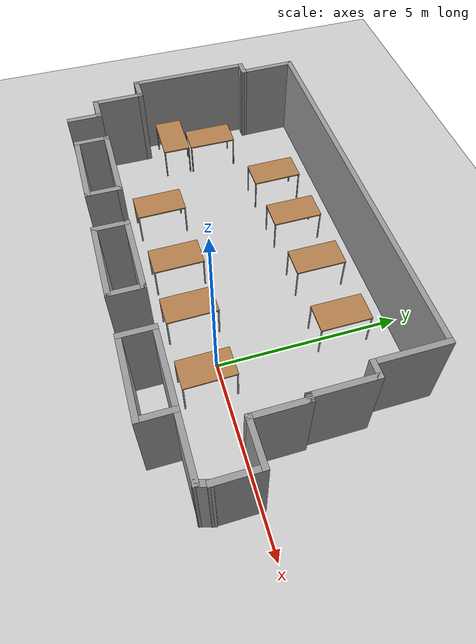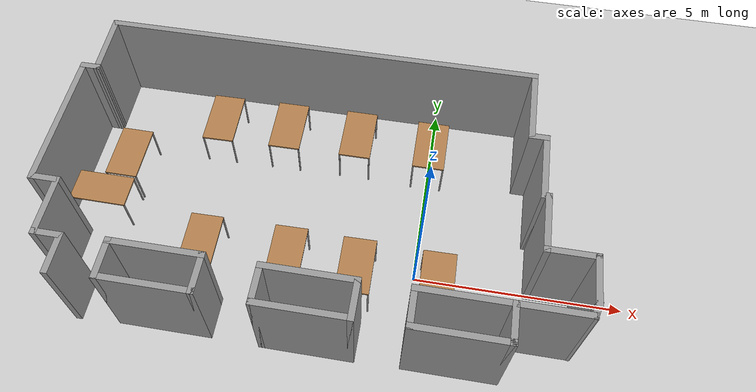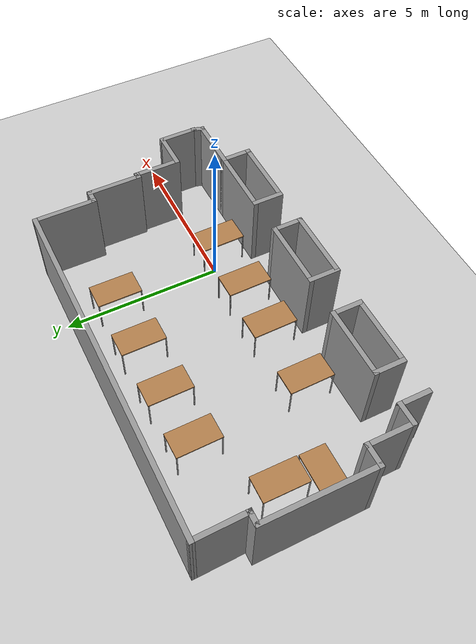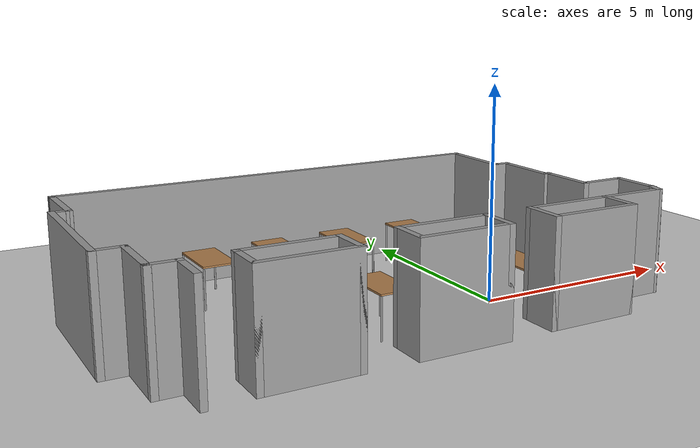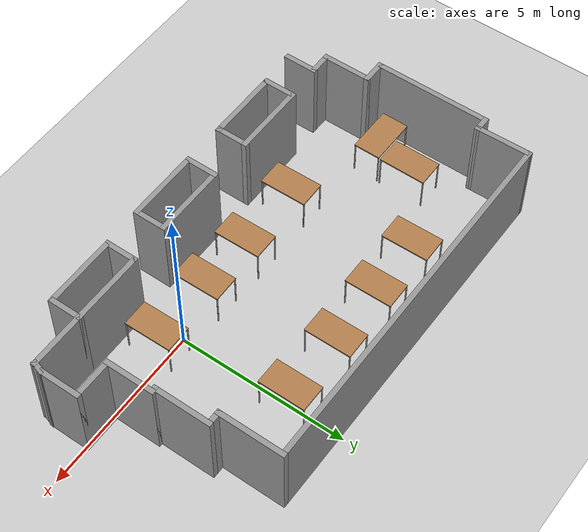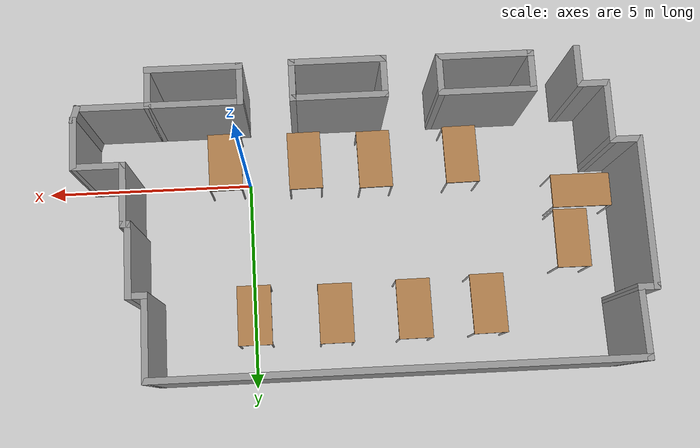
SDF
<sdf version="1.6">
 <world name="default">
  <light name="sun" type="directional">
   <pose>0 0 10 0 -0 0</pose>
   <diffuse>0.8 0.8 0.8 1</diffuse>
   <specular>0.1 0.1 0.1 1</specular>
   <attenuation>
    <range>1000</range>
    <constant>0.9</constant>
    <linear>0.01</linear>
    <quadratic>0.001</quadratic>
   </attenuation>
   <direction>-0.5 0.5 -1</direction>
  </light>
  <model name="ground_plane">
   <static>1</static>
   <link name="link">
    <collision name="collision">
     <geometry><plane><normal>0 0 1</normal><size>100 100</size></plane></geometry>
     <surface><friction><ode><mu>100</mu><mu2>50</mu2></ode></friction></surface>
    </collision>
    <visual name="visual">
     <cast_shadows>0</cast_shadows>
     <geometry><plane><normal>0 0 1</normal><size>100 100</size></plane></geometry>
     <material>
      <script><uri>file://media/materials/scripts/gazebo.material</uri><name>Gazebo/Grey</name></script>
     </material>
    </visual>
   </link>
  </model>
  <gravity>0 0 -9.8</gravity>
  <magnetic_field>6e-06 2.3e-05 -4.2e-05</magnetic_field>
  <atmosphere type="adiabatic"/>
  <physics name="default_physics" default="0" type="ode">
   <max_step_size>0.001</max_step_size>
   <real_time_factor>1</real_time_factor>
   <real_time_update_rate>1000</real_time_update_rate>
  </physics>
  <scene><ambient>0.4 0.4 0.4 1</ambient><background>0.7 0.7 0.7 1</background><shadows>1</shadows></scene>
  <spherical_coordinates>
   <surface_model>EARTH_WGS84</surface_model>
   <latitude_deg>0</latitude_deg>
   <longitude_deg>0</longitude_deg>
   <elevation>0</elevation>
   <heading_deg>0</heading_deg>
  </spherical_coordinates>
  <model name="kavezo">
   <pose>-2.54101 1.27594 0 0 -0 0</pose>
   <link name="Wall_0">
    <collision name="Wall_0_Collision">
     <geometry><box><size>11 0.15 2.5</size></box></geometry>
     <pose>0 0 1.25 0 -0 0</pose>
    </collision>
    <visual name="Wall_0_Visual">
     <pose>0 0 1.25 0 -0 0</pose>
     <geometry><box><size>11 0.15 2.5</size></box></geometry>
     <material>
      <script><uri>file://media/materials/scripts/gazebo.material</uri><name>Gazebo/Grey</name></script>
      <ambient>1 1 1 1</ambient>
     </material>
    </visual>
    <pose>-0.623111 3.53655 0 0 -0 0</pose>
   </link>
   <link name="Wall_1">
    <collision name="Wall_1_Collision">
     <geometry><box><size>2 0.15 2.5</size></box></geometry>
     <pose>0 0 1.25 0 -0 0</pose>
    </collision>
    <visual name="Wall_1_Visual">
     <pose>0 0 1.25 0 -0 0</pose>
     <geometry><box><size>2 0.15 2.5</size></box></geometry>
     <material>
      <script><uri>file://media/materials/scripts/gazebo.material</uri><name>Gazebo/Grey</name></script>
      <ambient>1 1 1 1</ambient>
     </material>
    </visual>
    <pose>4.80189 2.61155 0 0 0 -1.5708</pose>
   </link>
   <link name="Wall_10">
    <collision name="Wall_10_Collision">
     <geometry><box><size>0.75 0.15 2.5</size></box></geometry>
     <pose>0 0 1.25 0 -0 0</pose>
    </collision>
    <visual name="Wall_10_Visual">
     <pose>0 0 1.25 0 -0 0</pose>
     <geometry><box><size>0.75 0.15 2.5</size></box></geometry>
     <material>
      <script><uri>file://media/materials/scripts/gazebo.material</uri><name>Gazebo/Grey</name></script>
      <ambient>1 1 1 1</ambient>
     </material>
    </visual>
    <pose>-5.4703 -2.6879 0 0 -0 3.14159</pose>
   </link>
   <link name="Wall_11">
    <collision name="Wall_11_Collision">
     <geometry><box><size>1.5 0.15 2.5</size></box></geometry>
     <pose>0 0 1.25 0 -0 0</pose>
    </collision>
    <visual name="Wall_11_Visual">
     <pose>0 0 1.25 0 -0 0</pose>
     <geometry><box><size>1.5 0.15 2.5</size></box></geometry>
     <material>
      <script><uri>file://media/materials/scripts/gazebo.material</uri><name>Gazebo/Grey</name></script>
      <ambient>1 1 1 1</ambient>
     </material>
    </visual>
    <pose>-5.7703 -2.0129 0 0 -0 1.5708</pose>
   </link>
   <link name="Wall_12">
    <collision name="Wall_12_Collision">
     <geometry><box><size>0.75 0.15 2.5</size></box></geometry>
     <pose>0 0 1.25 0 -0 0</pose>
    </collision>
    <visual name="Wall_12_Visual">
     <pose>0 0 1.25 0 -0 0</pose>
     <geometry><box><size>0.75 0.15 2.5</size></box></geometry>
     <material>
      <script><uri>file://media/materials/scripts/gazebo.material</uri><name>Gazebo/Grey</name></script>
      <ambient>1 1 1 1</ambient>
     </material>
    </visual>
    <pose>-6.0703 -1.3379 0 0 -0 3.14159</pose>
   </link>
   <link name="Wall_13">
    <collision name="Wall_13_Collision">
     <geometry><box><size>3.5 0.15 2.5</size></box></geometry>
     <pose>0 0 1.25 0 -0 0</pose>
    </collision>
    <visual name="Wall_13_Visual">
     <pose>0 0 1.25 0 -0 0</pose>
     <geometry><box><size>3.5 0.15 2.5</size></box></geometry>
     <material>
      <script><uri>file://media/materials/scripts/gazebo.material</uri><name>Gazebo/Grey</name></script>
      <ambient>1 1 1 1</ambient>
     </material>
    </visual>
    <pose>-6.3703 0.337099 0 0 -0 1.5708</pose>
   </link>
   <link name="Wall_14">
    <collision name="Wall_14_Collision">
     <geometry><box><size>0.5 0.15 2.5</size></box></geometry>
     <pose>0 0 1.25 0 -0 0</pose>
    </collision>
    <visual name="Wall_14_Visual">
     <pose>0 0 1.25 0 -0 0</pose>
     <geometry><box><size>0.5 0.15 2.5</size></box></geometry>
     <material>
      <script><uri>file://media/materials/scripts/gazebo.material</uri><name>Gazebo/Grey</name></script>
      <ambient>1 1 1 1</ambient>
     </material>
    </visual>
    <pose>-6.1953 2.0121 0 0 -0 0</pose>
   </link>
   <link name="Wall_15">
    <collision name="Wall_15_Collision">
     <geometry><box><size>1.6747 0.15 2.5</size></box></geometry>
     <pose>0 0 1.25 0 -0 0</pose>
    </collision>
    <visual name="Wall_15_Visual">
     <pose>0 0 1.25 0 -0 0</pose>
     <geometry><box><size>1.6747 0.15 2.5</size></box></geometry>
     <material>
      <script><uri>file://media/materials/scripts/gazebo.material</uri><name>Gazebo/Grey</name></script>
      <ambient>1 1 1 1</ambient>
     </material>
    </visual>
    <pose>-6.03421 2.77432 0 0 -0 1.58903</pose>
   </link>
   <link name="Wall_17">
    <collision name="Wall_17_Collision">
     <geometry><box><size>1 0.15 2.5</size></box></geometry>
     <pose>0 0 1.25 0 -0 0</pose>
    </collision>
    <visual name="Wall_17_Visual">
     <pose>0 0 1.25 0 -0 0</pose>
     <geometry><box><size>1 0.15 2.5</size></box></geometry>
     <material>
      <script><uri>file://media/materials/scripts/gazebo.material</uri><name>Gazebo/Grey</name></script>
      <ambient>1 1 1 1</ambient>
     </material>
    </visual>
    <pose>-4.1063 -3.0597 0 0 0 -1.5708</pose>
   </link>
   <link name="Wall_18">
    <collision name="Wall_18_Collision">
     <geometry><box><size>2.25 0.15 2.5</size></box></geometry>
     <pose>0 0 1.25 0 -0 0</pose>
    </collision>
    <visual name="Wall_18_Visual">
     <pose>0 0 1.25 0 -0 0</pose>
     <geometry><box><size>2.25 0.15 2.5</size></box></geometry>
     <material>
      <script><uri>file://media/materials/scripts/gazebo.material</uri><name>Gazebo/Grey</name></script>
      <ambient>1 1 1 1</ambient>
     </material>
    </visual>
    <pose>-3.0563 -3.4847 0 0 -0 0</pose>
   </link>
   <link name="Wall_19">
    <collision name="Wall_19_Collision">
     <geometry><box><size>1 0.15 2.5</size></box></geometry>
     <pose>0 0 1.25 0 -0 0</pose>
    </collision>
    <visual name="Wall_19_Visual">
     <pose>0 0 1.25 0 -0 0</pose>
     <geometry><box><size>1 0.15 2.5</size></box></geometry>
     <material>
      <script><uri>file://media/materials/scripts/gazebo.material</uri><name>Gazebo/Grey</name></script>
      <ambient>1 1 1 1</ambient>
     </material>
    </visual>
    <pose>-2.0063 -3.0597 0 0 -0 1.5708</pose>
   </link>
   <link name="Wall_2">
    <collision name="Wall_2_Collision">
     <geometry><box><size>0.5 0.15 2.5</size></box></geometry>
     <pose>0 0 1.25 0 -0 0</pose>
    </collision>
    <visual name="Wall_2_Visual">
     <pose>0 0 1.25 0 -0 0</pose>
     <geometry><box><size>0.5 0.15 2.5</size></box></geometry>
     <material>
      <script><uri>file://media/materials/scripts/gazebo.material</uri><name>Gazebo/Grey</name></script>
      <ambient>1 1 1 1</ambient>
     </material>
    </visual>
    <pose>4.97689 1.68654 0 0 -0 0</pose>
   </link>
   <link name="Wall_20">
    <collision name="Wall_20_Collision">
     <geometry><box><size>2.25 0.15 2.5</size></box></geometry>
     <pose>0 0 1.25 0 -0 0</pose>
    </collision>
    <visual name="Wall_20_Visual">
     <pose>0 0 1.25 0 -0 0</pose>
     <geometry><box><size>2.25 0.15 2.5</size></box></geometry>
     <material>
      <script><uri>file://media/materials/scripts/gazebo.material</uri><name>Gazebo/Grey</name></script>
      <ambient>1 1 1 1</ambient>
     </material>
    </visual>
    <pose>-3.0563 -2.6347 0 0 -0 3.14159</pose>
   </link>
   <link name="Wall_22">
    <collision name="Wall_22_Collision">
     <geometry><box><size>1 0.15 2.5</size></box></geometry>
     <pose>0 0 1.25 0 -0 0</pose>
    </collision>
    <visual name="Wall_22_Visual">
     <pose>0 0 1.25 0 -0 0</pose>
     <geometry><box><size>1 0.15 2.5</size></box></geometry>
     <material>
      <script><uri>file://media/materials/scripts/gazebo.material</uri><name>Gazebo/Grey</name></script>
      <ambient>1 1 1 1</ambient>
     </material>
    </visual>
    <pose>1.37335 -3.08751 0 0 -0 1.5708</pose>
   </link>
   <link name="Wall_23">
    <collision name="Wall_23_Collision">
     <geometry><box><size>2.25 0.15 2.5</size></box></geometry>
     <pose>0 0 1.25 0 -0 0</pose>
    </collision>
    <visual name="Wall_23_Visual">
     <pose>0 0 1.25 0 -0 0</pose>
     <geometry><box><size>2.25 0.15 2.5</size></box></geometry>
     <material>
      <script><uri>file://media/materials/scripts/gazebo.material</uri><name>Gazebo/Grey</name></script>
      <ambient>1 1 1 1</ambient>
     </material>
    </visual>
    <pose>0.323345 -2.66251 0 0 -0 3.14159</pose>
   </link>
   <link name="Wall_24">
    <collision name="Wall_24_Collision">
     <geometry><box><size>1 0.15 2.5</size></box></geometry>
     <pose>0 0 1.25 0 -0 0</pose>
    </collision>
    <visual name="Wall_24_Visual">
     <pose>0 0 1.25 0 -0 0</pose>
     <geometry><box><size>1 0.15 2.5</size></box></geometry>
     <material>
      <script><uri>file://media/materials/scripts/gazebo.material</uri><name>Gazebo/Grey</name></script>
      <ambient>1 1 1 1</ambient>
     </material>
    </visual>
    <pose>-0.726655 -3.08751 0 0 0 -1.5708</pose>
   </link>
   <link name="Wall_25">
    <collision name="Wall_25_Collision">
     <geometry><box><size>2.25 0.15 2.5</size></box></geometry>
     <pose>0 0 1.25 0 -0 0</pose>
    </collision>
    <visual name="Wall_25_Visual">
     <pose>0 0 1.25 0 -0 0</pose>
     <geometry><box><size>2.25 0.15 2.5</size></box></geometry>
     <material>
      <script><uri>file://media/materials/scripts/gazebo.material</uri><name>Gazebo/Grey</name></script>
      <ambient>1 1 1 1</ambient>
     </material>
    </visual>
    <pose>0.323345 -3.51251 0 0 -0 0</pose>
   </link>
   <link name="Wall_27">
    <collision name="Wall_27_Collision">
     <geometry><box><size>1 0.15 2.5</size></box></geometry>
     <pose>0 0 1.25 0 -0 0</pose>
    </collision>
    <visual name="Wall_27_Visual">
     <pose>0 0 1.25 0 -0 0</pose>
     <geometry><box><size>1 0.15 2.5</size></box></geometry>
     <material>
      <script><uri>file://media/materials/scripts/gazebo.material</uri><name>Gazebo/Grey</name></script>
      <ambient>1 1 1 1</ambient>
     </material>
    </visual>
    <pose>2.57035 -3.0597 0 0 0 -1.5708</pose>
   </link>
   <link name="Wall_28">
    <collision name="Wall_28_Collision">
     <geometry><box><size>2.25 0.15 2.5</size></box></geometry>
     <pose>0 0 1.25 0 -0 0</pose>
    </collision>
    <visual name="Wall_28_Visual">
     <pose>0 0 1.25 0 -0 0</pose>
     <geometry><box><size>2.25 0.15 2.5</size></box></geometry>
     <material>
      <script><uri>file://media/materials/scripts/gazebo.material</uri><name>Gazebo/Grey</name></script>
      <ambient>1 1 1 1</ambient>
     </material>
    </visual>
    <pose>3.62035 -3.4847 0 0 -0 0</pose>
   </link>
   <link name="Wall_29">
    <collision name="Wall_29_Collision">
     <geometry><box><size>1 0.15 2.5</size></box></geometry>
     <pose>0 0 1.25 0 -0 0</pose>
    </collision>
    <visual name="Wall_29_Visual">
     <pose>0 0 1.25 0 -0 0</pose>
     <geometry><box><size>1 0.15 2.5</size></box></geometry>
     <material>
      <script><uri>file://media/materials/scripts/gazebo.material</uri><name>Gazebo/Grey</name></script>
      <ambient>1 1 1 1</ambient>
     </material>
    </visual>
    <pose>4.67035 -3.0597 0 0 -0 1.5708</pose>
   </link>
   <link name="Wall_3">
    <collision name="Wall_3_Collision">
     <geometry><box><size>1.75 0.15 2.5</size></box></geometry>
     <pose>0 0 1.25 0 -0 0</pose>
    </collision>
    <visual name="Wall_3_Visual">
     <pose>0 0 1.25 0 -0 0</pose>
     <geometry><box><size>1.75 0.15 2.5</size></box></geometry>
     <material>
      <script><uri>file://media/materials/scripts/gazebo.material</uri><name>Gazebo/Grey</name></script>
      <ambient>1 1 1 1</ambient>
     </material>
    </visual>
    <pose>5.15189 0.886546 0 0 0 -1.5708</pose>
   </link>
   <link name="Wall_32">
    <collision name="Wall_32_Collision">
     <geometry><box><size>2.25 0.15 2.5</size></box></geometry>
     <pose>0 0 1.25 0 -0 0</pose>
    </collision>
    <visual name="Wall_32_Visual">
     <pose>0 0 1.25 0 -0 0</pose>
     <geometry><box><size>2.25 0.15 2.5</size></box></geometry>
     <material>
      <script><uri>file://media/materials/scripts/gazebo.material</uri><name>Gazebo/Grey</name></script>
      <ambient>1 1 1 1</ambient>
     </material>
    </visual>
    <pose>3.62035 -2.6347 0 0 -0 3.14159</pose>
   </link>
   <link name="Wall_34">
    <collision name="Wall_34_Collision">
     <geometry><box><size>1.75 0.15 2.5</size></box></geometry>
     <pose>0 0 1.25 0 -0 0</pose>
    </collision>
    <visual name="Wall_34_Visual">
     <pose>0 0 1.25 0 -0 0</pose>
     <geometry><box><size>1.75 0.15 2.5</size></box></geometry>
     <material>
      <script><uri>file://media/materials/scripts/gazebo.material</uri><name>Gazebo/Grey</name></script>
      <ambient>1 1 1 1</ambient>
     </material>
    </visual>
    <pose>5.47035 -2.6347 0 0 -0 0</pose>
   </link>
   <link name="Wall_35">
    <collision name="Wall_35_Collision">
     <geometry><box><size>0.433236 0.15 2.5</size></box></geometry>
     <pose>0 0 1.25 0 -0 0</pose>
    </collision>
    <visual name="Wall_35_Visual">
     <pose>0 0 1.25 0 -0 0</pose>
     <geometry><box><size>0.433236 0.15 2.5</size></box></geometry>
     <material>
      <script><uri>file://media/materials/scripts/gazebo.material</uri><name>Gazebo/Grey</name></script>
      <ambient>1 1 1 1</ambient>
     </material>
    </visual>
    <pose>6.31112 -2.49908 0 0 -0 1.27879</pose>
   </link>
   <link name="Wall_37">
    <collision name="Wall_37_Collision">
     <geometry><box><size>1 0.15 2.5</size></box></geometry>
     <pose>0 0 1.25 0 -0 0</pose>
    </collision>
    <visual name="Wall_37_Visual">
     <pose>0 0 1.25 0 -0 0</pose>
     <geometry><box><size>1 0.15 2.5</size></box></geometry>
     <material>
      <script><uri>file://media/materials/scripts/gazebo.material</uri><name>Gazebo/Grey</name></script>
      <ambient>1 1 1 1</ambient>
     </material>
    </visual>
    <pose>-5.1703 -3.1129 0 0 0 -1.5708</pose>
   </link>
   <link name="Wall_4">
    <collision name="Wall_4_Collision">
     <geometry><box><size>0.25 0.15 2.5</size></box></geometry>
     <pose>0 0 1.25 0 -0 0</pose>
    </collision>
    <visual name="Wall_4_Visual">
     <pose>0 0 1.25 0 -0 0</pose>
     <geometry><box><size>0.25 0.15 2.5</size></box></geometry>
     <material>
      <script><uri>file://media/materials/scripts/gazebo.material</uri><name>Gazebo/Grey</name></script>
      <ambient>1 1 1 1</ambient>
     </material>
    </visual>
    <pose>5.20189 0.086546 0 0 -0 0</pose>
   </link>
   <link name="Wall_5">
    <collision name="Wall_5_Collision">
     <geometry><box><size>1.5 0.15 2.5</size></box></geometry>
     <pose>0 0 1.25 0 -0 0</pose>
    </collision>
    <visual name="Wall_5_Visual">
     <pose>0 0 1.25 0 -0 0</pose>
     <geometry><box><size>1.5 0.15 2.5</size></box></geometry>
     <material>
      <script><uri>file://media/materials/scripts/gazebo.material</uri><name>Gazebo/Grey</name></script>
      <ambient>1 1 1 1</ambient>
     </material>
    </visual>
    <pose>5.25189 -0.588454 0 0 0 -1.5708</pose>
   </link>
   <link name="Wall_6">
    <collision name="Wall_6_Collision">
     <geometry><box><size>1.25 0.15 2.5</size></box></geometry>
     <pose>0 0 1.25 0 -0 0</pose>
    </collision>
    <visual name="Wall_6_Visual">
     <pose>0 0 1.25 0 -0 0</pose>
     <geometry><box><size>1.25 0.15 2.5</size></box></geometry>
     <material>
      <script><uri>file://media/materials/scripts/gazebo.material</uri><name>Gazebo/Grey</name></script>
      <ambient>1 1 1 1</ambient>
     </material>
    </visual>
    <pose>5.80189 -1.26345 0 0 -0 0</pose>
   </link>
   <link name="Wall_7">
    <collision name="Wall_7_Collision">
     <geometry><box><size>1.25 0.15 2.5</size></box></geometry>
     <pose>0 0 1.25 0 -0 0</pose>
    </collision>
    <visual name="Wall_7_Visual">
     <pose>0 0 1.25 0 -0 0</pose>
     <geometry><box><size>1.25 0.15 2.5</size></box></geometry>
     <material>
      <script><uri>file://media/materials/scripts/gazebo.material</uri><name>Gazebo/Grey</name></script>
      <ambient>1 1 1 1</ambient>
     </material>
    </visual>
    <pose>6.35189 -1.81345 0 0 0 -1.5708</pose>
   </link>
   <static>1</static>
  </model>
  <model name="table">
   <static>0</static>
   <link name="link">
    <collision name="surface">
     <pose>0 0 1 0 -0 0</pose>
     <geometry><box><size>1.5 0.8 0.03</size></box></geometry>
     <surface><friction><ode><mu>0.6</mu><mu2>0.6</mu2></ode></friction></surface>
    </collision>
    <visual name="visual1">
     <pose>0 0 1 0 -0 0</pose>
     <geometry><box><size>1.4 0.8 0.04</size></box></geometry>
     <material>
      <script><uri>file://media/materials/scripts/gazebo.material</uri><name>Gazebo/Wood</name></script>
     </material>
    </visual>
    <collision name="front_left_leg">
     <pose>0.68 0.38 0.5 0 -0 0</pose>
     <geometry><cylinder><radius>0.02</radius><length>1</length></cylinder></geometry>
    </collision>
    <visual name="front_left_leg">
     <pose>0.68 0.38 0.5 0 -0 0</pose>
     <geometry><cylinder><radius>0.02</radius><length>1</length></cylinder></geometry>
     <material>
      <script><uri>file://media/materials/scripts/gazebo.material</uri><name>Gazebo/Grey</name></script>
     </material>
    </visual>
    <collision name="front_right_leg">
     <pose>0.68 -0.38 0.5 0 -0 0</pose>
     <geometry><cylinder><radius>0.02</radius><length>1</length></cylinder></geometry>
    </collision>
    <visual name="front_right_leg">
     <pose>0.68 -0.38 0.5 0 -0 0</pose>
     <geometry><cylinder><radius>0.02</radius><length>1</length></cylinder></geometry>
     <material>
      <script><uri>file://media/materials/scripts/gazebo.material</uri><name>Gazebo/Grey</name></script>
     </material>
    </visual>
    <collision name="back_right_leg">
     <pose>-0.68 -0.38 0.5 0 -0 0</pose>
     <geometry><cylinder><radius>0.02</radius><length>1</length></cylinder></geometry>
    </collision>
    <visual name="back_right_leg">
     <pose>-0.68 -0.38 0.5 0 -0 0</pose>
     <geometry><cylinder><radius>0.02</radius><length>1</length></cylinder></geometry>
     <material>
      <script><uri>file://media/materials/scripts/gazebo.material</uri><name>Gazebo/Grey</name></script>
     </material>
    </visual>
    <collision name="back_left_leg">
     <pose>-0.68 0.38 0.5 0 -0 0</pose>
     <geometry><cylinder><radius>0.02</radius><length>1</length></cylinder></geometry>
    </collision>
    <visual name="back_left_leg">
     <pose>-0.68 0.38 0.5 0 -0 0</pose>
     <geometry><cylinder><radius>0.02</radius><length>1</length></cylinder></geometry>
     <material>
      <script><uri>file://media/materials/scripts/gazebo.material</uri><name>Gazebo/Grey</name></script>
     </material>
    </visual>
    <inertial>
     <inertia><ixx>1</ixx><ixy>0</ixy><ixz>0</ixz><iyy>1</iyy><iyz>0</iyz><izz>1</izz></inertia>
     <mass>1</mass>
    </inertial>
   </link>
   <pose>-0.039109 3.34951 -9e-06 0 -1e-06 -1.57133</pose>
  </model>
  <model name="table_0">
   <static>0</static>
   <link name="link">
    <collision name="surface">
     <pose>0 0 1 0 -0 0</pose>
     <geometry><box><size>1.5 0.8 0.03</size></box></geometry>
     <surface><friction><ode><mu>0.6</mu><mu2>0.6</mu2></ode></friction></surface>
    </collision>
    <visual name="visual1">
     <pose>0 0 1 0 -0 0</pose>
     <geometry><box><size>1.4 0.8 0.04</size></box></geometry>
     <material>
      <script><uri>file://media/materials/scripts/gazebo.material</uri><name>Gazebo/Wood</name></script>
     </material>
    </visual>
    <collision name="front_left_leg">
     <pose>0.68 0.38 0.5 0 -0 0</pose>
     <geometry><cylinder><radius>0.02</radius><length>1</length></cylinder></geometry>
    </collision>
    <visual name="front_left_leg">
     <pose>0.68 0.38 0.5 0 -0 0</pose>
     <geometry><cylinder><radius>0.02</radius><length>1</length></cylinder></geometry>
     <material>
      <script><uri>file://media/materials/scripts/gazebo.material</uri><name>Gazebo/Grey</name></script>
     </material>
    </visual>
    <collision name="front_right_leg">
     <pose>0.68 -0.38 0.5 0 -0 0</pose>
     <geometry><cylinder><radius>0.02</radius><length>1</length></cylinder></geometry>
    </collision>
    <visual name="front_right_leg">
     <pose>0.68 -0.38 0.5 0 -0 0</pose>
     <geometry><cylinder><radius>0.02</radius><length>1</length></cylinder></geometry>
     <material>
      <script><uri>file://media/materials/scripts/gazebo.material</uri><name>Gazebo/Grey</name></script>
     </material>
    </visual>
    <collision name="back_right_leg">
     <pose>-0.68 -0.38 0.5 0 -0 0</pose>
     <geometry><cylinder><radius>0.02</radius><length>1</length></cylinder></geometry>
    </collision>
    <visual name="back_right_leg">
     <pose>-0.68 -0.38 0.5 0 -0 0</pose>
     <geometry><cylinder><radius>0.02</radius><length>1</length></cylinder></geometry>
     <material>
      <script><uri>file://media/materials/scripts/gazebo.material</uri><name>Gazebo/Grey</name></script>
     </material>
    </visual>
    <collision name="back_left_leg">
     <pose>-0.68 0.38 0.5 0 -0 0</pose>
     <geometry><cylinder><radius>0.02</radius><length>1</length></cylinder></geometry>
    </collision>
    <visual name="back_left_leg">
     <pose>-0.68 0.38 0.5 0 -0 0</pose>
     <geometry><cylinder><radius>0.02</radius><length>1</length></cylinder></geometry>
     <material>
      <script><uri>file://media/materials/scripts/gazebo.material</uri><name>Gazebo/Grey</name></script>
     </material>
    </visual>
    <inertial>
     <inertia><ixx>1</ixx><ixy>0</ixy><ixz>0</ixz><iyy>1</iyy><iyz>0</iyz><izz>1</izz></inertia>
     <mass>1</mass>
    </inertial>
   </link>
   <pose>-1.9371 3.38738 -8e-06 0 -1e-06 -1.56758</pose>
  </model>
  <model name="table_1">
   <static>0</static>
   <link name="link">
    <collision name="surface">
     <pose>0 0 1 0 -0 0</pose>
     <geometry><box><size>1.5 0.8 0.03</size></box></geometry>
     <surface><friction><ode><mu>0.6</mu><mu2>0.6</mu2></ode></friction></surface>
    </collision>
    <visual name="visual1">
     <pose>0 0 1 0 -0 0</pose>
     <geometry><box><size>1.4 0.8 0.04</size></box></geometry>
     <material>
      <script><uri>file://media/materials/scripts/gazebo.material</uri><name>Gazebo/Wood</name></script>
     </material>
    </visual>
    <collision name="front_left_leg">
     <pose>0.68 0.38 0.5 0 -0 0</pose>
     <geometry><cylinder><radius>0.02</radius><length>1</length></cylinder></geometry>
    </collision>
    <visual name="front_left_leg">
     <pose>0.68 0.38 0.5 0 -0 0</pose>
     <geometry><cylinder><radius>0.02</radius><length>1</length></cylinder></geometry>
     <material>
      <script><uri>file://media/materials/scripts/gazebo.material</uri><name>Gazebo/Grey</name></script>
     </material>
    </visual>
    <collision name="front_right_leg">
     <pose>0.68 -0.38 0.5 0 -0 0</pose>
     <geometry><cylinder><radius>0.02</radius><length>1</length></cylinder></geometry>
    </collision>
    <visual name="front_right_leg">
     <pose>0.68 -0.38 0.5 0 -0 0</pose>
     <geometry><cylinder><radius>0.02</radius><length>1</length></cylinder></geometry>
     <material>
      <script><uri>file://media/materials/scripts/gazebo.material</uri><name>Gazebo/Grey</name></script>
     </material>
    </visual>
    <collision name="back_right_leg">
     <pose>-0.68 -0.38 0.5 0 -0 0</pose>
     <geometry><cylinder><radius>0.02</radius><length>1</length></cylinder></geometry>
    </collision>
    <visual name="back_right_leg">
     <pose>-0.68 -0.38 0.5 0 -0 0</pose>
     <geometry><cylinder><radius>0.02</radius><length>1</length></cylinder></geometry>
     <material>
      <script><uri>file://media/materials/scripts/gazebo.material</uri><name>Gazebo/Grey</name></script>
     </material>
    </visual>
    <collision name="back_left_leg">
     <pose>-0.68 0.38 0.5 0 -0 0</pose>
     <geometry><cylinder><radius>0.02</radius><length>1</length></cylinder></geometry>
    </collision>
    <visual name="back_left_leg">
     <pose>-0.68 0.38 0.5 0 -0 0</pose>
     <geometry><cylinder><radius>0.02</radius><length>1</length></cylinder></geometry>
     <material>
      <script><uri>file://media/materials/scripts/gazebo.material</uri><name>Gazebo/Grey</name></script>
     </material>
    </visual>
    <inertial>
     <inertia><ixx>1</ixx><ixy>0</ixy><ixz>0</ixz><iyy>1</iyy><iyz>0</iyz><izz>1</izz></inertia>
     <mass>1</mass>
    </inertial>
   </link>
   <pose>-3.77213 3.36443 -2e-06 0 0 -1.56512</pose>
  </model>
  <model name="table_2">
   <static>0</static>
   <link name="link">
    <collision name="surface">
     <pose>0 0 1 0 -0 0</pose>
     <geometry><box><size>1.5 0.8 0.03</size></box></geometry>
     <surface><friction><ode><mu>0.6</mu><mu2>0.6</mu2></ode></friction></surface>
    </collision>
    <visual name="visual1">
     <pose>0 0 1 0 -0 0</pose>
     <geometry><box><size>1.4 0.8 0.04</size></box></geometry>
     <material>
      <script><uri>file://media/materials/scripts/gazebo.material</uri><name>Gazebo/Wood</name></script>
     </material>
    </visual>
    <collision name="front_left_leg">
     <pose>0.68 0.38 0.5 0 -0 0</pose>
     <geometry><cylinder><radius>0.02</radius><length>1</length></cylinder></geometry>
    </collision>
    <visual name="front_left_leg">
     <pose>0.68 0.38 0.5 0 -0 0</pose>
     <geometry><cylinder><radius>0.02</radius><length>1</length></cylinder></geometry>
     <material>
      <script><uri>file://media/materials/scripts/gazebo.material</uri><name>Gazebo/Grey</name></script>
     </material>
    </visual>
    <collision name="front_right_leg">
     <pose>0.68 -0.38 0.5 0 -0 0</pose>
     <geometry><cylinder><radius>0.02</radius><length>1</length></cylinder></geometry>
    </collision>
    <visual name="front_right_leg">
     <pose>0.68 -0.38 0.5 0 -0 0</pose>
     <geometry><cylinder><radius>0.02</radius><length>1</length></cylinder></geometry>
     <material>
      <script><uri>file://media/materials/scripts/gazebo.material</uri><name>Gazebo/Grey</name></script>
     </material>
    </visual>
    <collision name="back_right_leg">
     <pose>-0.68 -0.38 0.5 0 -0 0</pose>
     <geometry><cylinder><radius>0.02</radius><length>1</length></cylinder></geometry>
    </collision>
    <visual name="back_right_leg">
     <pose>-0.68 -0.38 0.5 0 -0 0</pose>
     <geometry><cylinder><radius>0.02</radius><length>1</length></cylinder></geometry>
     <material>
      <script><uri>file://media/materials/scripts/gazebo.material</uri><name>Gazebo/Grey</name></script>
     </material>
    </visual>
    <collision name="back_left_leg">
     <pose>-0.68 0.38 0.5 0 -0 0</pose>
     <geometry><cylinder><radius>0.02</radius><length>1</length></cylinder></geometry>
    </collision>
    <visual name="back_left_leg">
     <pose>-0.68 0.38 0.5 0 -0 0</pose>
     <geometry><cylinder><radius>0.02</radius><length>1</length></cylinder></geometry>
     <material>
      <script><uri>file://media/materials/scripts/gazebo.material</uri><name>Gazebo/Grey</name></script>
     </material>
    </visual>
    <inertial>
     <inertia><ixx>1</ixx><ixy>0</ixy><ixz>0</ixz><iyy>1</iyy><iyz>0</iyz><izz>1</izz></inertia>
     <mass>1</mass>
    </inertial>
   </link>
   <pose>-5.51474 3.32524 -1e-06 0 1e-06 -1.55865</pose>
  </model>
  <model name="table_3">
   <static>0</static>
   <link name="link">
    <collision name="surface">
     <pose>0 0 1 0 -0 0</pose>
     <geometry><box><size>1.5 0.8 0.03</size></box></geometry>
     <surface><friction><ode><mu>0.6</mu><mu2>0.6</mu2></ode></friction></surface>
    </collision>
    <visual name="visual1">
     <pose>0 0 1 0 -0 0</pose>
     <geometry><box><size>1.4 0.8 0.04</size></box></geometry>
     <material>
      <script><uri>file://media/materials/scripts/gazebo.material</uri><name>Gazebo/Wood</name></script>
     </material>
    </visual>
    <collision name="front_left_leg">
     <pose>0.68 0.38 0.5 0 -0 0</pose>
     <geometry><cylinder><radius>0.02</radius><length>1</length></cylinder></geometry>
    </collision>
    <visual name="front_left_leg">
     <pose>0.68 0.38 0.5 0 -0 0</pose>
     <geometry><cylinder><radius>0.02</radius><length>1</length></cylinder></geometry>
     <material>
      <script><uri>file://media/materials/scripts/gazebo.material</uri><name>Gazebo/Grey</name></script>
     </material>
    </visual>
    <collision name="front_right_leg">
     <pose>0.68 -0.38 0.5 0 -0 0</pose>
     <geometry><cylinder><radius>0.02</radius><length>1</length></cylinder></geometry>
    </collision>
    <visual name="front_right_leg">
     <pose>0.68 -0.38 0.5 0 -0 0</pose>
     <geometry><cylinder><radius>0.02</radius><length>1</length></cylinder></geometry>
     <material>
      <script><uri>file://media/materials/scripts/gazebo.material</uri><name>Gazebo/Grey</name></script>
     </material>
    </visual>
    <collision name="back_right_leg">
     <pose>-0.68 -0.38 0.5 0 -0 0</pose>
     <geometry><cylinder><radius>0.02</radius><length>1</length></cylinder></geometry>
    </collision>
    <visual name="back_right_leg">
     <pose>-0.68 -0.38 0.5 0 -0 0</pose>
     <geometry><cylinder><radius>0.02</radius><length>1</length></cylinder></geometry>
     <material>
      <script><uri>file://media/materials/scripts/gazebo.material</uri><name>Gazebo/Grey</name></script>
     </material>
    </visual>
    <collision name="back_left_leg">
     <pose>-0.68 0.38 0.5 0 -0 0</pose>
     <geometry><cylinder><radius>0.02</radius><length>1</length></cylinder></geometry>
    </collision>
    <visual name="back_left_leg">
     <pose>-0.68 0.38 0.5 0 -0 0</pose>
     <geometry><cylinder><radius>0.02</radius><length>1</length></cylinder></geometry>
     <material>
      <script><uri>file://media/materials/scripts/gazebo.material</uri><name>Gazebo/Grey</name></script>
     </material>
    </visual>
    <inertial>
     <inertia><ixx>1</ixx><ixy>0</ixy><ixz>0</ixz><iyy>1</iyy><iyz>0</iyz><izz>1</izz></inertia>
     <mass>1</mass>
    </inertial>
   </link>
   <pose>-7.93959 0.716518 -1e-06 0 2e-06 -0.00588</pose>
  </model>
  <model name="table_4">
   <static>0</static>
   <link name="link">
    <collision name="surface">
     <pose>0 0 1 0 -0 0</pose>
     <geometry><box><size>1.5 0.8 0.03</size></box></geometry>
     <surface><friction><ode><mu>0.6</mu><mu2>0.6</mu2></ode></friction></surface>
    </collision>
    <visual name="visual1">
     <pose>0 0 1 0 -0 0</pose>
     <geometry><box><size>1.4 0.8 0.04</size></box></geometry>
     <material>
      <script><uri>file://media/materials/scripts/gazebo.material</uri><name>Gazebo/Wood</name></script>
     </material>
    </visual>
    <collision name="front_left_leg">
     <pose>0.68 0.38 0.5 0 -0 0</pose>
     <geometry><cylinder><radius>0.02</radius><length>1</length></cylinder></geometry>
    </collision>
    <visual name="front_left_leg">
     <pose>0.68 0.38 0.5 0 -0 0</pose>
     <geometry><cylinder><radius>0.02</radius><length>1</length></cylinder></geometry>
     <material>
      <script><uri>file://media/materials/scripts/gazebo.material</uri><name>Gazebo/Grey</name></script>
     </material>
    </visual>
    <collision name="front_right_leg">
     <pose>0.68 -0.38 0.5 0 -0 0</pose>
     <geometry><cylinder><radius>0.02</radius><length>1</length></cylinder></geometry>
    </collision>
    <visual name="front_right_leg">
     <pose>0.68 -0.38 0.5 0 -0 0</pose>
     <geometry><cylinder><radius>0.02</radius><length>1</length></cylinder></geometry>
     <material>
      <script><uri>file://media/materials/scripts/gazebo.material</uri><name>Gazebo/Grey</name></script>
     </material>
    </visual>
    <collision name="back_right_leg">
     <pose>-0.68 -0.38 0.5 0 -0 0</pose>
     <geometry><cylinder><radius>0.02</radius><length>1</length></cylinder></geometry>
    </collision>
    <visual name="back_right_leg">
     <pose>-0.68 -0.38 0.5 0 -0 0</pose>
     <geometry><cylinder><radius>0.02</radius><length>1</length></cylinder></geometry>
     <material>
      <script><uri>file://media/materials/scripts/gazebo.material</uri><name>Gazebo/Grey</name></script>
     </material>
    </visual>
    <collision name="back_left_leg">
     <pose>-0.68 0.38 0.5 0 -0 0</pose>
     <geometry><cylinder><radius>0.02</radius><length>1</length></cylinder></geometry>
    </collision>
    <visual name="back_left_leg">
     <pose>-0.68 0.38 0.5 0 -0 0</pose>
     <geometry><cylinder><radius>0.02</radius><length>1</length></cylinder></geometry>
     <material>
      <script><uri>file://media/materials/scripts/gazebo.material</uri><name>Gazebo/Grey</name></script>
     </material>
    </visual>
    <inertial>
     <inertia><ixx>1</ixx><ixy>0</ixy><ixz>0</ixz><iyy>1</iyy><iyz>0</iyz><izz>1</izz></inertia>
     <mass>1</mass>
    </inertial>
   </link>
   <pose>-7.61656 1.86464 -8e-06 0 0 -1.57668</pose>
  </model>
  <model name="table_2_clone">
   <static>0</static>
   <link name="link">
    <collision name="surface">
     <pose>0 0 1 0 -0 0</pose>
     <geometry><box><size>1.5 0.8 0.03</size></box></geometry>
     <surface><friction><ode><mu>0.6</mu><mu2>0.6</mu2></ode></friction></surface>
    </collision>
    <visual name="visual1">
     <pose>0 0 1 0 -0 0</pose>
     <geometry><box><size>1.4 0.8 0.04</size></box></geometry>
     <material>
      <script><uri>file://media/materials/scripts/gazebo.material</uri><name>Gazebo/Wood</name></script>
     </material>
    </visual>
    <collision name="front_left_leg">
     <pose>0.68 0.38 0.5 0 -0 0</pose>
     <geometry><cylinder><radius>0.02</radius><length>1</length></cylinder></geometry>
    </collision>
    <visual name="front_left_leg">
     <pose>0.68 0.38 0.5 0 -0 0</pose>
     <geometry><cylinder><radius>0.02</radius><length>1</length></cylinder></geometry>
     <material>
      <script><uri>file://media/materials/scripts/gazebo.material</uri><name>Gazebo/Grey</name></script>
     </material>
    </visual>
    <collision name="front_right_leg">
     <pose>0.68 -0.38 0.5 0 -0 0</pose>
     <geometry><cylinder><radius>0.02</radius><length>1</length></cylinder></geometry>
    </collision>
    <visual name="front_right_leg">
     <pose>0.68 -0.38 0.5 0 -0 0</pose>
     <geometry><cylinder><radius>0.02</radius><length>1</length></cylinder></geometry>
     <material>
      <script><uri>file://media/materials/scripts/gazebo.material</uri><name>Gazebo/Grey</name></script>
     </material>
    </visual>
    <collision name="back_right_leg">
     <pose>-0.68 -0.38 0.5 0 -0 0</pose>
     <geometry><cylinder><radius>0.02</radius><length>1</length></cylinder></geometry>
    </collision>
    <visual name="back_right_leg">
     <pose>-0.68 -0.38 0.5 0 -0 0</pose>
     <geometry><cylinder><radius>0.02</radius><length>1</length></cylinder></geometry>
     <material>
      <script><uri>file://media/materials/scripts/gazebo.material</uri><name>Gazebo/Grey</name></script>
     </material>
    </visual>
    <collision name="back_left_leg">
     <pose>-0.68 0.38 0.5 0 -0 0</pose>
     <geometry><cylinder><radius>0.02</radius><length>1</length></cylinder></geometry>
    </collision>
    <visual name="back_left_leg">
     <pose>-0.68 0.38 0.5 0 -0 0</pose>
     <geometry><cylinder><radius>0.02</radius><length>1</length></cylinder></geometry>
     <material>
      <script><uri>file://media/materials/scripts/gazebo.material</uri><name>Gazebo/Grey</name></script>
     </material>
    </visual>
    <inertial>
     <inertia><ixx>1</ixx><ixy>0</ixy><ixz>0</ixz><iyy>1</iyy><iyz>0</iyz><izz>1</izz></inertia>
     <mass>1</mass>
    </inertial>
   </link>
   <pose>-5.13865 -0.310182 -1e-06 -1e-06 1e-06 -1.55865</pose>
  </model>
  <model name="table_2_clone_clone">
   <static>0</static>
   <link name="link">
    <collision name="surface">
     <pose>0 0 1 0 -0 0</pose>
     <geometry><box><size>1.5 0.8 0.03</size></box></geometry>
     <surface><friction><ode><mu>0.6</mu><mu2>0.6</mu2></ode></friction></surface>
    </collision>
    <visual name="visual1">
     <pose>0 0 1 0 -0 0</pose>
     <geometry><box><size>1.4 0.8 0.04</size></box></geometry>
     <material>
      <script><uri>file://media/materials/scripts/gazebo.material</uri><name>Gazebo/Wood</name></script>
     </material>
    </visual>
    <collision name="front_left_leg">
     <pose>0.68 0.38 0.5 0 -0 0</pose>
     <geometry><cylinder><radius>0.02</radius><length>1</length></cylinder></geometry>
    </collision>
    <visual name="front_left_leg">
     <pose>0.68 0.38 0.5 0 -0 0</pose>
     <geometry><cylinder><radius>0.02</radius><length>1</length></cylinder></geometry>
     <material>
      <script><uri>file://media/materials/scripts/gazebo.material</uri><name>Gazebo/Grey</name></script>
     </material>
    </visual>
    <collision name="front_right_leg">
     <pose>0.68 -0.38 0.5 0 -0 0</pose>
     <geometry><cylinder><radius>0.02</radius><length>1</length></cylinder></geometry>
    </collision>
    <visual name="front_right_leg">
     <pose>0.68 -0.38 0.5 0 -0 0</pose>
     <geometry><cylinder><radius>0.02</radius><length>1</length></cylinder></geometry>
     <material>
      <script><uri>file://media/materials/scripts/gazebo.material</uri><name>Gazebo/Grey</name></script>
     </material>
    </visual>
    <collision name="back_right_leg">
     <pose>-0.68 -0.38 0.5 0 -0 0</pose>
     <geometry><cylinder><radius>0.02</radius><length>1</length></cylinder></geometry>
    </collision>
    <visual name="back_right_leg">
     <pose>-0.68 -0.38 0.5 0 -0 0</pose>
     <geometry><cylinder><radius>0.02</radius><length>1</length></cylinder></geometry>
     <material>
      <script><uri>file://media/materials/scripts/gazebo.material</uri><name>Gazebo/Grey</name></script>
     </material>
    </visual>
    <collision name="back_left_leg">
     <pose>-0.68 0.38 0.5 0 -0 0</pose>
     <geometry><cylinder><radius>0.02</radius><length>1</length></cylinder></geometry>
    </collision>
    <visual name="back_left_leg">
     <pose>-0.68 0.38 0.5 0 -0 0</pose>
     <geometry><cylinder><radius>0.02</radius><length>1</length></cylinder></geometry>
     <material>
      <script><uri>file://media/materials/scripts/gazebo.material</uri><name>Gazebo/Grey</name></script>
     </material>
    </visual>
    <inertial>
     <inertia><ixx>1</ixx><ixy>0</ixy><ixz>0</ixz><iyy>1</iyy><iyz>0</iyz><izz>1</izz></inertia>
     <mass>1</mass>
    </inertial>
   </link>
   <pose>-3.05179 -0.288886 -7e-06 0 4e-06 -1.55865</pose>
  </model>
  <model name="table_2_clone_clone_clone">
   <static>0</static>
   <link name="link">
    <collision name="surface">
     <pose>0 0 1 0 -0 0</pose>
     <geometry><box><size>1.5 0.8 0.03</size></box></geometry>
     <surface><friction><ode><mu>0.6</mu><mu2>0.6</mu2></ode></friction></surface>
    </collision>
    <visual name="visual1">
     <pose>0 0 1 0 -0 0</pose>
     <geometry><box><size>1.4 0.8 0.04</size></box></geometry>
     <material>
      <script><uri>file://media/materials/scripts/gazebo.material</uri><name>Gazebo/Wood</name></script>
     </material>
    </visual>
    <collision name="front_left_leg">
     <pose>0.68 0.38 0.5 0 -0 0</pose>
     <geometry><cylinder><radius>0.02</radius><length>1</length></cylinder></geometry>
    </collision>
    <visual name="front_left_leg">
     <pose>0.68 0.38 0.5 0 -0 0</pose>
     <geometry><cylinder><radius>0.02</radius><length>1</length></cylinder></geometry>
     <material>
      <script><uri>file://media/materials/scripts/gazebo.material</uri><name>Gazebo/Grey</name></script>
     </material>
    </visual>
    <collision name="front_right_leg">
     <pose>0.68 -0.38 0.5 0 -0 0</pose>
     <geometry><cylinder><radius>0.02</radius><length>1</length></cylinder></geometry>
    </collision>
    <visual name="front_right_leg">
     <pose>0.68 -0.38 0.5 0 -0 0</pose>
     <geometry><cylinder><radius>0.02</radius><length>1</length></cylinder></geometry>
     <material>
      <script><uri>file://media/materials/scripts/gazebo.material</uri><name>Gazebo/Grey</name></script>
     </material>
    </visual>
    <collision name="back_right_leg">
     <pose>-0.68 -0.38 0.5 0 -0 0</pose>
     <geometry><cylinder><radius>0.02</radius><length>1</length></cylinder></geometry>
    </collision>
    <visual name="back_right_leg">
     <pose>-0.68 -0.38 0.5 0 -0 0</pose>
     <geometry><cylinder><radius>0.02</radius><length>1</length></cylinder></geometry>
     <material>
      <script><uri>file://media/materials/scripts/gazebo.material</uri><name>Gazebo/Grey</name></script>
     </material>
    </visual>
    <collision name="back_left_leg">
     <pose>-0.68 0.38 0.5 0 -0 0</pose>
     <geometry><cylinder><radius>0.02</radius><length>1</length></cylinder></geometry>
    </collision>
    <visual name="back_left_leg">
     <pose>-0.68 0.38 0.5 0 -0 0</pose>
     <geometry><cylinder><radius>0.02</radius><length>1</length></cylinder></geometry>
     <material>
      <script><uri>file://media/materials/scripts/gazebo.material</uri><name>Gazebo/Grey</name></script>
     </material>
    </visual>
    <inertial>
     <inertia><ixx>1</ixx><ixy>0</ixy><ixz>0</ixz><iyy>1</iyy><iyz>0</iyz><izz>1</izz></inertia>
     <mass>1</mass>
    </inertial>
   </link>
   <pose>-1.37534 -0.329266 -4e-06 -2e-06 4e-06 -1.55865</pose>
  </model>
  <model name="table_2_clone_clone_clone_clone">
   <static>0</static>
   <link name="link">
    <collision name="surface">
     <pose>0 0 1 0 -0 0</pose>
     <geometry><box><size>1.5 0.8 0.03</size></box></geometry>
     <surface><friction><ode><mu>0.6</mu><mu2>0.6</mu2></ode></friction></surface>
    </collision>
    <visual name="visual1">
     <pose>0 0 1 0 -0 0</pose>
     <geometry><box><size>1.4 0.8 0.04</size></box></geometry>
     <material>
      <script><uri>file://media/materials/scripts/gazebo.material</uri><name>Gazebo/Wood</name></script>
     </material>
    </visual>
    <collision name="front_left_leg">
     <pose>0.68 0.38 0.5 0 -0 0</pose>
     <geometry><cylinder><radius>0.02</radius><length>1</length></cylinder></geometry>
    </collision>
    <visual name="front_left_leg">
     <pose>0.68 0.38 0.5 0 -0 0</pose>
     <geometry><cylinder><radius>0.02</radius><length>1</length></cylinder></geometry>
     <material>
      <script><uri>file://media/materials/scripts/gazebo.material</uri><name>Gazebo/Grey</name></script>
     </material>
    </visual>
    <collision name="front_right_leg">
     <pose>0.68 -0.38 0.5 0 -0 0</pose>
     <geometry><cylinder><radius>0.02</radius><length>1</length></cylinder></geometry>
    </collision>
    <visual name="front_right_leg">
     <pose>0.68 -0.38 0.5 0 -0 0</pose>
     <geometry><cylinder><radius>0.02</radius><length>1</length></cylinder></geometry>
     <material>
      <script><uri>file://media/materials/scripts/gazebo.material</uri><name>Gazebo/Grey</name></script>
     </material>
    </visual>
    <collision name="back_right_leg">
     <pose>-0.68 -0.38 0.5 0 -0 0</pose>
     <geometry><cylinder><radius>0.02</radius><length>1</length></cylinder></geometry>
    </collision>
    <visual name="back_right_leg">
     <pose>-0.68 -0.38 0.5 0 -0 0</pose>
     <geometry><cylinder><radius>0.02</radius><length>1</length></cylinder></geometry>
     <material>
      <script><uri>file://media/materials/scripts/gazebo.material</uri><name>Gazebo/Grey</name></script>
     </material>
    </visual>
    <collision name="back_left_leg">
     <pose>-0.68 0.38 0.5 0 -0 0</pose>
     <geometry><cylinder><radius>0.02</radius><length>1</length></cylinder></geometry>
    </collision>
    <visual name="back_left_leg">
     <pose>-0.68 0.38 0.5 0 -0 0</pose>
     <geometry><cylinder><radius>0.02</radius><length>1</length></cylinder></geometry>
     <material>
      <script><uri>file://media/materials/scripts/gazebo.material</uri><name>Gazebo/Grey</name></script>
     </material>
    </visual>
    <inertial>
     <inertia><ixx>1</ixx><ixy>0</ixy><ixz>0</ixz><iyy>1</iyy><iyz>0</iyz><izz>1</izz></inertia>
     <mass>1</mass>
    </inertial>
   </link>
   <pose>0.538898 -0.37306 -1e-06 0 1e-06 -1.55865</pose>
  </model>
 </world>
</sdf>
